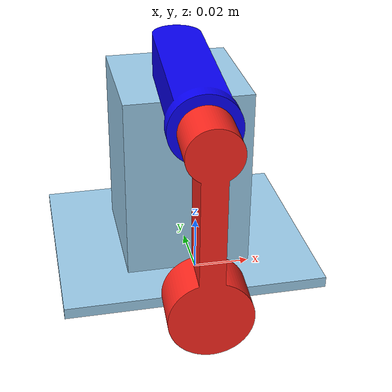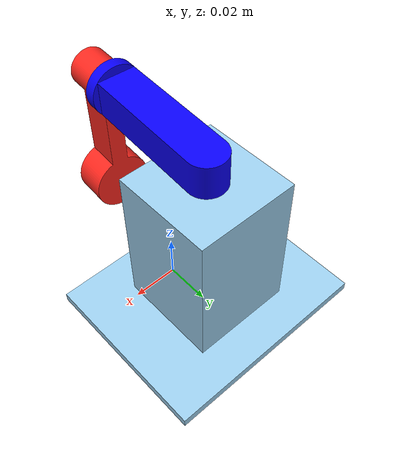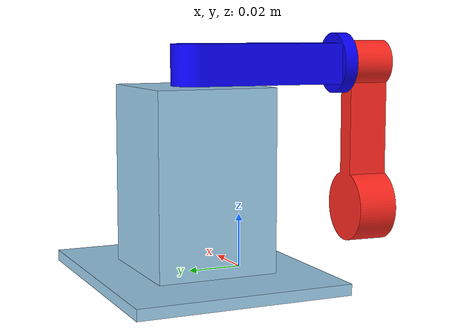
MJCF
<?xml version="1.0" ?>
<!-- Generated using onshape-to-robot -->
<!-- OnShape https://cad.onshape.com/documents/8958d4e5127adc3c34752d12/w/aa05c0204d6d2e4464286bb1/e/3ed70ab94a6730ecf56b1c50 -->
<mujoco model="furuta">
    <compiler angle="radian" meshdir="assets" autolimits="true"/>
    <option integrator="RK4" cone="elliptic"/>
    <default>
        <default class="furuta">
            <joint frictionloss="0.008" armature="0.003"/>
            <position kp="50" dampratio="0.03"/>

            <default class="visual">
                <geom type="mesh" contype="0" conaffinity="0" group="2"/>
            </default>
            <default class="collision">
                <geom group="3"/>
            </default>
        </default>
    </default>
    <worldbody>
        <!-- Link base -->
        <body name="base" pos="0 0 0" quat="1 0 0 0" childclass="furuta">
            <inertial pos="-0.00295694 0.0191018 0.0288044" mass="1.13058" fullinertia="0.000820486 0.00087301 0.00059956 0 0 0"/>
            <!-- Part base -->
            <!-- Mesh base -->
            <geom type="mesh" class="visual" pos="0.0193214 -0.00298793 -0.00145828" quat="1 0 0 0" mesh="base" material="base_material"/>
            <!-- Mesh base -->
            <geom type="mesh" class="collision" pos="0.0193214 -0.00298793 -0.00145828" quat="1 0 0 0" mesh="base" material="base_material"/>
        <!-- Link cópia__5__de_peça2_poc_quadrupede -->
        <body name="cópia__5__de_peça2_poc_quadrupede" pos="-0.00295694 0.0191018 0.0685417" quat="0 -0.999552 0.0299244 0">
            <!-- Joint from base to cópia__5__de_peça2_poc_quadrupede -->
            <joint name="arm" type="hinge"/>
            <inertial pos="1.73472e-18 0.0262348 -0.0075" mass="0.0173792" fullinertia="6.87711e-06 8.08156e-07 6.95023e-06 5.33272e-23 0 0"/>
            <!-- Part cópia__5__de_peça2_poc_quadrupede -->
            <!-- Mesh cópia__5__de_peça2_poc_quadrupede -->
            <geom type="mesh" class="visual" pos="-0.015 0.0638383 0" quat="0.707107 0.707107 -0 -2.45327e-18" mesh="cópia__5__de_peça2_poc_quadrupede" material="cópia__5__de_peça2_poc_quadrupede_material"/>
            <!-- Mesh cópia__5__de_peça2_poc_quadrupede -->
            <geom type="mesh" class="collision" pos="-0.015 0.0638383 0" quat="0.707107 0.707107 -0 -2.45327e-18" mesh="cópia__5__de_peça2_poc_quadrupede" material="cópia__5__de_peça2_poc_quadrupede_material"/>
        <!-- Link do pendulo passivo -->
        <body name="cópia__3__de_peça2_poc_quadrupede" pos="1.62197e-16 0.05 -0.0075" quat="0.707107 -0.707107 1.90484e-17 1.22663e-18">
            <!-- Joint from cópia__5__de_peça2_poc_quadrupede to cópia__3__de_peça2_poc_quadrupede -->
            <joint name="passive1" type="hinge"/>1.22663e-18
            <inertial pos="-6.70263e-08 -0.0333729 0.0176637" mass="0.319779" fullinertia="0.00019813 1.81315e-05 0.00019723 5.85614e-10 -9.65078e-12 8.92524e-06"/>
            <!--site name="imu_site" pos="0 0 0" size="0.01" rgba="1 0 0 1"/-->
            <!-- Part cópia__3__de_peça2_poc_quadrupede -->
            <!-- Mesh cópia__3__de_peça2_poc_quadrupede -->
            <geom type="mesh" class="visual" pos="-0.015 -0.0638383 0.011" quat="0.707107 -0.707107 0 -1.08947e-32" mesh="cópia__3__de_peça2_poc_quadrupede" material="cópia__3__de_peça2_poc_quadrupede_material"/>
            <!-- Mesh cópia__3__de_peça2_poc_quadrupede -->
            <geom type="mesh" class="collision" pos="-0.015 -0.0638383 0.011" quat="0.707107 -0.707107 0 -1.08947e-32" mesh="cópia__3__de_peça2_poc_quadrupede" material="cópia__3__de_peça2_poc_quadrupede_material"/>
    </body>
    </body>
    </body>
    </worldbody>
    <asset>
        <mesh file="base.stl"/>
        <mesh file="cópia__5__de_peça2_poc_quadrupede.stl"/>
        <mesh file="cópia__3__de_peça2_poc_quadrupede.stl"/>
        <material name="base_material" rgba="0.615686 0.811765 0.929412 1"/>
        <material name="cópia__5__de_peça2_poc_quadrupede_material" rgba="0.0352941 0 0.968627 1"/>
        <material name="cópia__3__de_peça2_poc_quadrupede_material" rgba="1 0.156863 0.121569 1"/>
    </asset>
    <actuator>
        <!--position class="furuta" name="arm" joint="arm"/-->
        <velocity name="arm_velocity" joint="arm" kv="50" ctrllimited="true" ctrlrange="-300 300"/>
    </actuator>
    <!--sensor>
        Angular velocity (gyroscope) -->
        <!--gyro name="imu_gyro" site="imu_site"/-->

        <!-- Linear acceleration (accelerometer) -->
    <equality/>
</mujoco>
